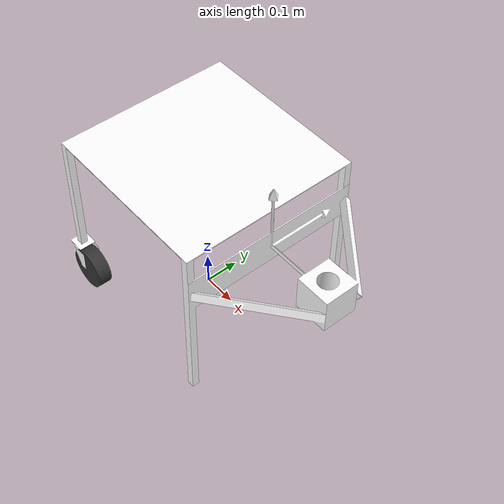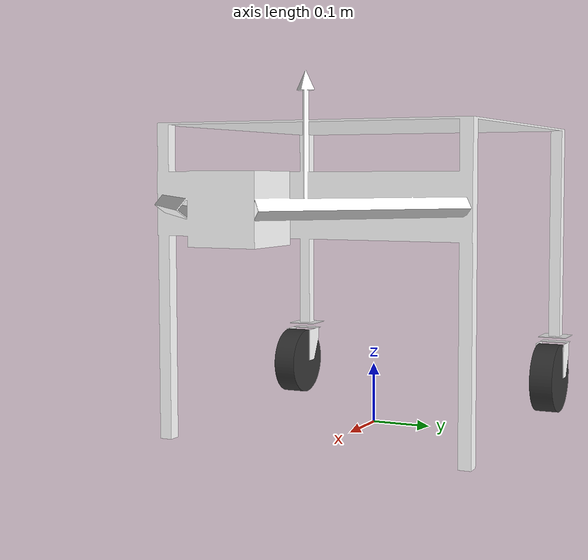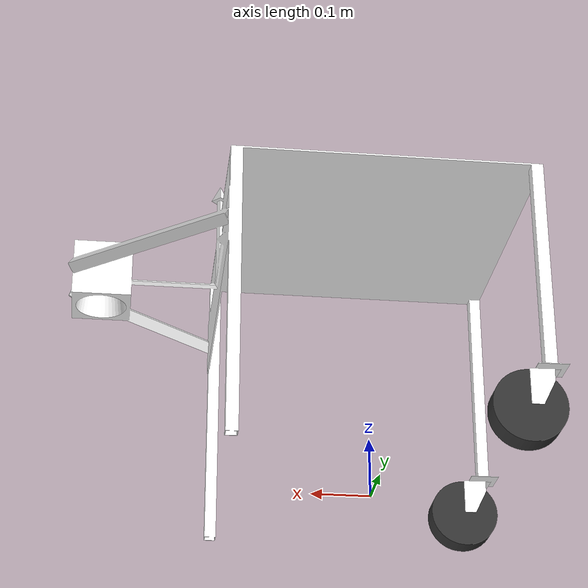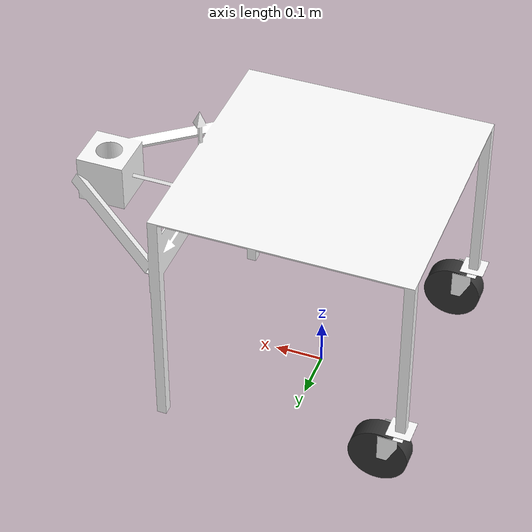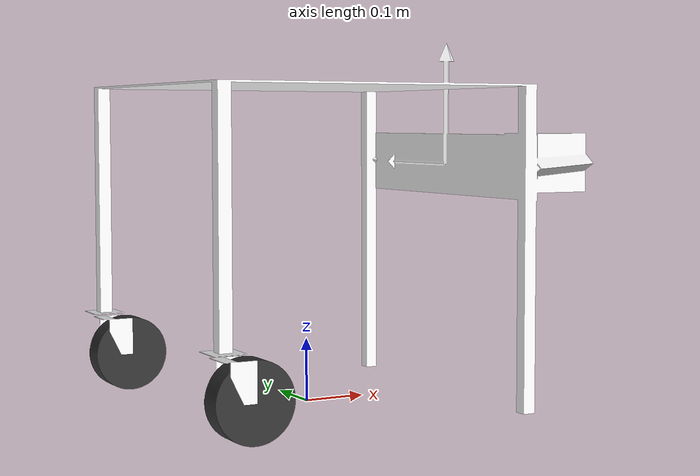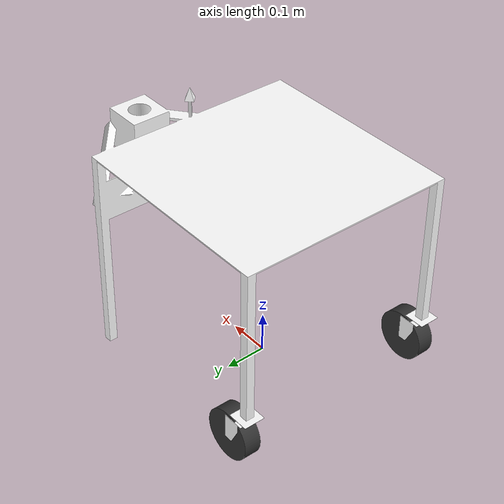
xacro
<?xml version="1.0" encoding="utf-8"?>
<robot xmlns:xacro="http://www.ros.org/wiki/xacro" name="movingshelf_trailertype_cyl">
	<xacro:include filename="$(find transbot_description)/urdf/movingshelf_trailertype_cyl/movingshelf_trailertype_cyl.urdf.xacro"></xacro:include>
	<xacro:movingshelf_trailertype_cyl prefix="" name=""></xacro:movingshelf_trailertype_cyl>
</robot>

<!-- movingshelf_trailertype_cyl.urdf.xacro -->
<robot xmlns:xacro="http://www.ros.org/wiki/xacro" name="movingshelf_trailertype_cyl">
	<xacro:macro name="movingshelf_trailertype_cyl" params="prefix='' name='movingshelf_trailertype_cyl' suffix=''">
		<link name="${prefix}${name}${suffix}_">
			<inertial density="7850">
				<origin xyz="0.19527435657328707 0.0005163112374963201 0.4250460222328864" rpy="0 0 0"></origin>
				<mass value="1.8074444184700649"></mass>
				<inertia ixx="0.04687666873005347" ixy="-6.039587533061011e-05" ixz="0.017746123295539318" iyy="0.12229586472532983" iyz="4.668466723475325e-05" izz="0.14259514277570168"></inertia>
			</inertial>
			<visual>
				<geometry>
					<mesh filename="package://transbot_description/meshes/movingshelf_trailertype_cyl/_.stl" scale="1e-3 1e-3 1e-3"></mesh>
				</geometry>
				<material name="">
					<color rgba="1 1 1 1"></color>
				</material>
			</visual>
			<collision>
				<geometry>
					<mesh filename="package://transbot_description/meshes/movingshelf_trailertype_cyl/_.stl" scale="1e-3 1e-3 1e-3"></mesh>
				</geometry>
			</collision>
		</link>
		<xacro:include filename="$(find transbot_description)/urdf/movingshelf_trailertype_cyl/castor/castor.urdf.xacro"></xacro:include>
		<joint name="j/${prefix}${name}${suffix}castor0/_" type="fixed">
			<origin xyz="-0.25 0.25 0.13" rpy="0.0 0.0 0.0"></origin>
			<parent link="${prefix}${name}${suffix}_"></parent>
			<child link="${prefix}${name}${suffix}castor0/_"></child>
		</joint>
		<joint name="j/${prefix}${name}${suffix}castor1/_" type="fixed">
			<origin xyz="-0.25 -0.25 0.13" rpy="0.0 0.0 0.0"></origin>
			<parent link="${prefix}${name}${suffix}_"></parent>
			<child link="${prefix}${name}${suffix}castor1/_"></child>
		</joint>
		<xacro:castor prefix="${prefix}${name}${suffix}" suffix="0/"></xacro:castor>
		<xacro:castor prefix="${prefix}${name}${suffix}" suffix="1/"></xacro:castor>
	</xacro:macro>
</robot>

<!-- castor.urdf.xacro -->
<robot xmlns:xacro="http://www.ros.org/wiki/xacro" name="castor">
	<xacro:macro name="castor" params="prefix='' name='castor' suffix=''">
		<link name="${prefix}${name}${suffix}_">
			<inertial density="7850">
				<origin xyz="0.0 0.0 0.0" rpy="0 0 0"></origin>
				<mass value="0.010000000960038355"></mass>
				<inertia ixx="8.334167593144114e-06" ixy="-0.0" ixz="-0.0" iyy="8.334167593144114e-06" iyz="-0.0" izz="1.666666851936801e-05"></inertia>
			</inertial>
			<visual>
				<geometry>
					<mesh filename="package://transbot_description/meshes/movingshelf_trailertype_cyl/castor/_.stl" scale="1e-3 1e-3 1e-3"></mesh>
				</geometry>
				<material name="">
					<color rgba="1 1 1 1"></color>
				</material>
			</visual>
			<collision>
				<geometry>
					<mesh filename="package://transbot_description/meshes/movingshelf_trailertype_cyl/castor/_.stl" scale="1e-3 1e-3 1e-3"></mesh>
				</geometry>
			</collision>
		</link>
		<xacro:include filename="$(find transbot_description)/urdf/movingshelf_trailertype_cyl/castor/arm.urdf.xacro"></xacro:include>
		<xacro:include filename="$(find transbot_description)/urdf/movingshelf_trailertype_cyl/castor/wheel.urdf.xacro"></xacro:include>
		<joint name="j/${prefix}${name}${suffix}arm" type="continuous">
			<origin xyz="0.0 0.0 -0.01" rpy="0.0 0.0 0.0"></origin>
			<parent link="${prefix}${name}${suffix}_"></parent>
			<child link="${prefix}${name}${suffix}arm"></child>
			<axis xyz="0 0 1"></axis>
		</joint>
		<joint name="j/${prefix}${name}${suffix}wheel" type="continuous">
			<origin xyz="0.04 0.0 -0.06" rpy="1.5707963267948966 0.0 0.0"></origin>
			<parent link="${prefix}${name}${suffix}arm"></parent>
			<child link="${prefix}${name}${suffix}wheel"></child>
			<axis xyz="0 0 1"></axis>
		</joint>
		<xacro:arm prefix="${prefix}${name}${suffix}" suffix=""></xacro:arm>
		<xacro:wheel prefix="${prefix}${name}${suffix}" suffix=""></xacro:wheel>
	</xacro:macro>
</robot>

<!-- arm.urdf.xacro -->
<robot xmlns:xacro="http://www.ros.org/wiki/xacro" name="arm">
	<xacro:macro name="arm" params="prefix='' name='arm' suffix=''">
		<link name="${prefix}${name}${suffix}">
			<inertial density="7850">
				<origin xyz="0.018158393064544705 9.493440928499232e-09 -0.021373346834980968" rpy="0 0 0"></origin>
				<mass value="0.004989709850633517"></mass>
				<inertia ixx="4.269800316730365e-06" ixy="9.041006137306674e-13" ixz="6.760939545807843e-07" iyy="2.5602740276827752e-06" iyz="-3.380920874698791e-12" izz="3.497454039342391e-06"></inertia>
			</inertial>
			<visual>
				<geometry>
					<mesh filename="package://transbot_description/meshes/movingshelf_trailertype_cyl/castor/arm.stl" scale="1e-3 1e-3 1e-3"></mesh>
				</geometry>
				<material name="">
					<color rgba="1 1 1 1"></color>
				</material>
			</visual>
			<collision>
				<geometry>
					<mesh filename="package://transbot_description/meshes/movingshelf_trailertype_cyl/castor/arm.stl" scale="1e-3 1e-3 1e-3"></mesh>
				</geometry>
			</collision>
		</link>
	</xacro:macro>
</robot>

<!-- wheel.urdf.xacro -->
<robot xmlns:xacro="http://www.ros.org/wiki/xacro" name="wheel">
	<xacro:macro name="wheel" params="prefix='' name='wheel' suffix=''">
		<link name="${prefix}${name}${suffix}">
			<inertial density="2500">
				<origin xyz="-3.5666412972002695e-10 2.9372340094590455e-10 -2.7766040245667537e-10" rpy="0 0 0"></origin>
				<mass value="0.45156308139363927"></mass>
				<inertia ixx="0.0004658728509336166" ixy="-2.25005204387967e-12" ixz="2.386979950133806e-13" iyy="0.00046587291156659666" iyz="-3.682738863511243e-20" izz="0.0008113289974668683"></inertia>
			</inertial>
			<visual>
				<geometry>
					<mesh filename="package://transbot_description/meshes/movingshelf_trailertype_cyl/castor/wheel.stl" scale="1e-3 1e-3 1e-3"></mesh>
				</geometry>
				<material name="">
					<color rgba="0.2 0.2 0.2 1"></color>
				</material>
			</visual>
			<collision>
				<geometry>
					<mesh filename="package://transbot_description/meshes/movingshelf_trailertype_cyl/castor/wheel.stl" scale="1e-3 1e-3 1e-3"></mesh>
				</geometry>
			</collision>
		</link>
	</xacro:macro>
</robot>
